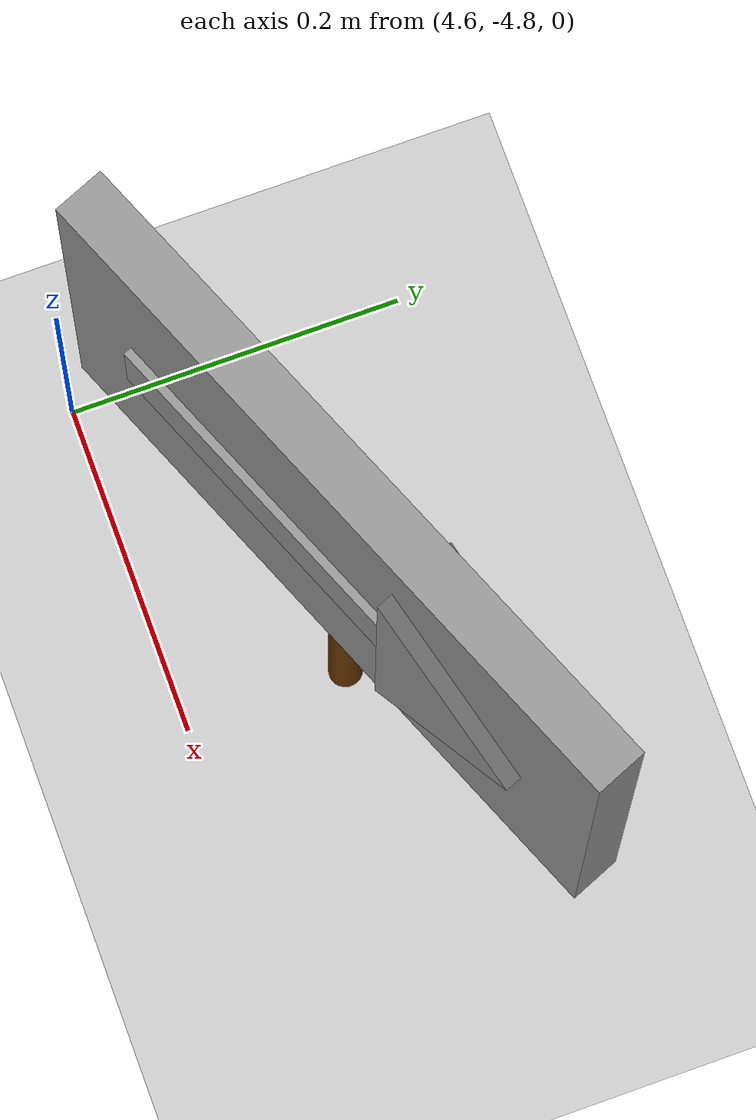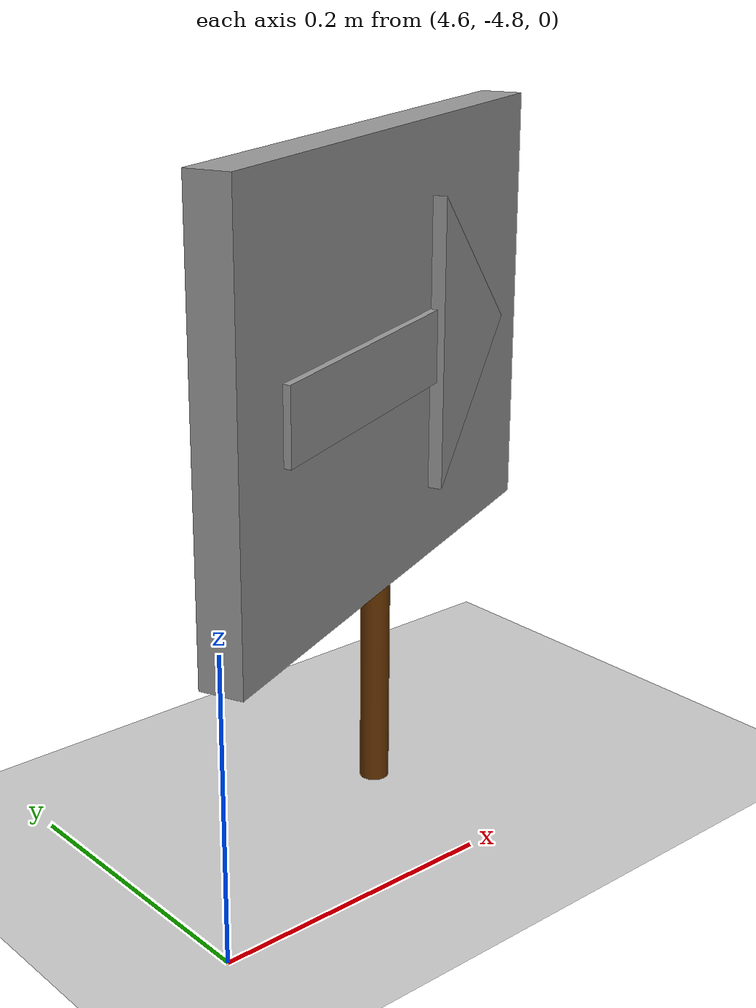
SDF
<sdf version="1.7">
 <world name="default">
  <model name="ground_plane">
   <static>1</static>
   <link name="link">
    <collision name="collision">
     <geometry><plane><normal>0 0 1</normal><size>100 100</size></plane></geometry>
     <surface>
      <contact><collide_bitmask>65535</collide_bitmask></contact>
      <friction><ode><mu>100</mu><mu2>50</mu2></ode></friction>
     </surface>
    </collision>
    <visual name="visual">
     <cast_shadows>0</cast_shadows>
     <geometry><plane><normal>0 0 1</normal><size>100 100</size></plane></geometry>
     <material>
      <script><uri>file://media/materials/scripts/gazebo.material</uri><name>Gazebo/Grey</name></script>
     </material>
    </visual>
   </link>
  </model>
  <model name="arrow_board_0">
   <link name="link_0">
    <inertial>
     <mass>1</mass>
     <inertia><ixx>0.145833</ixx><ixy>0</ixy><ixz>0</ixz><iyy>0.145833</iyy><iyz>0</iyz><izz>0.125</izz></inertia>
    </inertial>
    <pose>-0.01675 0.00625 0.1625 0 -0 0</pose>
    <gravity>0</gravity>
    <visual name="visual">
     <geometry><cylinder><radius>0.01</radius><length>0.3</length></cylinder></geometry>
     <material>
      <lighting>1</lighting>
      <script><uri>file://media/materials/scripts/gazebo.material</uri><name>Gazebo/Grey</name></script>
      <shader type="pixel"><normal_map>__default__</normal_map></shader>
      <ambient>0.4 0.2 0 1</ambient>
      <diffuse>0.4 0.2 0 1</diffuse>
      <specular>0 0 0 1</specular>
      <emissive>0 0 0 1</emissive>
     </material>
    </visual>
    <collision name="collision">
     <geometry><cylinder><radius>0.01</radius><length>0.3</length></cylinder></geometry>
     <surface>
      <friction>
       <ode><mu>1</mu><mu2>1</mu2><fdir1>0 0 0</fdir1><slip1>0</slip1><slip2>0</slip2></ode>
       <torsional>
        <coefficient>1</coefficient>
        <patch_radius>0</patch_radius>
        <surface_radius>0</surface_radius>
        <use_patch_radius>1</use_patch_radius>
        <ode><slip>0</slip></ode>
       </torsional>
      </friction>
      <bounce><restitution_coefficient>0</restitution_coefficient><threshold>1e+06</threshold></bounce>
      <contact>
       <collide_without_contact>0</collide_without_contact>
       <collide_without_contact_bitmask>1</collide_without_contact_bitmask>
       <collide_bitmask>1</collide_bitmask>
       <ode>
        <soft_cfm>0</soft_cfm>
        <soft_erp>0.2</soft_erp>
        <kp>1e+13</kp>
        <kd>1</kd>
        <max_vel>0.01</max_vel>
        <min_depth>0</min_depth>
       </ode>
       <bullet>
        <split_impulse>1</split_impulse>
        <split_impulse_penetration_threshold>-0.01</split_impulse_penetration_threshold>
        <soft_cfm>0</soft_cfm>
        <soft_erp>0.2</soft_erp>
        <kp>1e+13</kp>
        <kd>1</kd>
       </bullet>
      </contact>
     </surface>
    </collision>
   </link>
   <link name="link_1">
    <inertial>
     <mass>1</mass>
     <inertia>
      <ixx>0.166667</ixx>
      <ixy>0</ixy>
      <ixz>0</ixz>
      <iyy>0.166667</iyy>
      <iyz>0</iyz>
      <izz>0.166667</izz>
     </inertia>
    </inertial>
    <pose>-0.01675 0.00625 0.3125 0 -0 0</pose>
    <gravity>0</gravity>
    <visual name="visual">
     <geometry><box><size>0.4 0.03 0.3</size></box></geometry>
     <material>
      <lighting>1</lighting>
      <script><uri>file://media/materials/scripts/gazebo.material</uri><name>Gazebo/Grey</name></script>
      <shader type="pixel"><normal_map>__default__</normal_map></shader>
      <ambient>1 1 1 1</ambient>
      <diffuse>1 1 1 1</diffuse>
      <specular>1 1 1 1</specular>
      <emissive>0 0 0 1</emissive>
     </material>
    </visual>
    <collision name="collision">
     <geometry><box><size>0.4 0.03 0.3</size></box></geometry>
     <surface>
      <friction>
       <ode><mu>1</mu><mu2>1</mu2><fdir1>0 0 0</fdir1><slip1>0</slip1><slip2>0</slip2></ode>
       <torsional>
        <coefficient>1</coefficient>
        <patch_radius>0</patch_radius>
        <surface_radius>0</surface_radius>
        <use_patch_radius>1</use_patch_radius>
        <ode><slip>0</slip></ode>
       </torsional>
      </friction>
      <bounce><restitution_coefficient>0</restitution_coefficient><threshold>1e+06</threshold></bounce>
      <contact>
       <collide_without_contact>0</collide_without_contact>
       <collide_without_contact_bitmask>1</collide_without_contact_bitmask>
       <collide_bitmask>1</collide_bitmask>
       <ode>
        <soft_cfm>0</soft_cfm>
        <soft_erp>0.2</soft_erp>
        <kp>1e+13</kp>
        <kd>1</kd>
        <max_vel>0.01</max_vel>
        <min_depth>0</min_depth>
       </ode>
       <bullet>
        <split_impulse>1</split_impulse>
        <split_impulse_penetration_threshold>-0.01</split_impulse_penetration_threshold>
        <soft_cfm>0</soft_cfm>
        <soft_erp>0.2</soft_erp>
        <kp>1e+13</kp>
        <kd>1</kd>
       </bullet>
      </contact>
     </surface>
    </collision>
   </link>
   <link name="link_2">
    <inertial>
     <mass>1</mass>
     <inertia>
      <ixx>0.166667</ixx>
      <ixy>0</ixy>
      <ixz>0</ixz>
      <iyy>0.166667</iyy>
      <iyz>0</iyz>
      <izz>0.166667</izz>
     </inertia>
    </inertial>
    <pose>-0.06675 0.00625 0.3125 0 -0 0</pose>
    <gravity>0</gravity>
    <visual name="visual">
     <geometry><box><size>0.2 0.04 0.05</size></box></geometry>
     <material>
      <lighting>1</lighting>
      <script><uri>file://media/materials/scripts/gazebo.material</uri><name>Gazebo/Grey</name></script>
      <shader type="pixel"><normal_map>__default__</normal_map></shader>
      <ambient>0 0 0 1</ambient>
      <diffuse>0 0 0 1</diffuse>
      <specular>0 0 0 1</specular>
      <emissive>0 0 0 1</emissive>
     </material>
    </visual>
    <collision name="collision">
     <geometry><box><size>0.2 0.04 0.05</size></box></geometry>
     <surface>
      <friction>
       <ode><mu>1</mu><mu2>1</mu2><fdir1>0 0 0</fdir1><slip1>0</slip1><slip2>0</slip2></ode>
       <torsional>
        <coefficient>1</coefficient>
        <patch_radius>0</patch_radius>
        <surface_radius>0</surface_radius>
        <use_patch_radius>1</use_patch_radius>
        <ode><slip>0</slip></ode>
       </torsional>
      </friction>
      <bounce><restitution_coefficient>0</restitution_coefficient><threshold>1e+06</threshold></bounce>
      <contact>
       <collide_without_contact>0</collide_without_contact>
       <collide_without_contact_bitmask>1</collide_without_contact_bitmask>
       <collide_bitmask>1</collide_bitmask>
       <ode>
        <soft_cfm>0</soft_cfm>
        <soft_erp>0.2</soft_erp>
        <kp>1e+13</kp>
        <kd>1</kd>
        <max_vel>0.01</max_vel>
        <min_depth>0</min_depth>
       </ode>
       <bullet>
        <split_impulse>1</split_impulse>
        <split_impulse_penetration_threshold>-0.01</split_impulse_penetration_threshold>
        <soft_cfm>0</soft_cfm>
        <soft_erp>0.2</soft_erp>
        <kp>1e+13</kp>
        <kd>1</kd>
       </bullet>
      </contact>
     </surface>
    </collision>
   </link>
   <link name="link_4">
    <inertial>
     <mass>1</mass>
     <inertia>
      <ixx>0.166667</ixx>
      <ixy>0</ixy>
      <ixz>0</ixz>
      <iyy>0.166667</iyy>
      <iyz>0</iyz>
      <izz>0.166667</izz>
     </inertia>
    </inertial>
    <pose>0.033583 -0.01875 0.2125 0 -0 0</pose>
    <gravity>0</gravity>
    <visual name="visual">
     <geometry>
      <mesh>
       <uri>/home/ritesh/mobrob_ws/src/mobrob/meshes/arrow_head.stl</uri>
       <scale>0.001 0.001 0.001</scale>
      </mesh>
     </geometry>
     <material>
      <lighting>1</lighting>
      <script><uri>file://media/materials/scripts/gazebo.material</uri><name>Gazebo/Grey</name></script>
      <shader type="pixel"><normal_map>__default__</normal_map></shader>
      <ambient>0 0 0 1</ambient>
      <diffuse>0 0 0 1</diffuse>
      <specular>0 0 0 1</specular>
      <emissive>0 0 0 1</emissive>
     </material>
    </visual>
    <collision name="collision">
     <geometry>
      <mesh>
       <uri>/home/ritesh/mobrob_ws/src/mobrob/meshes/arrow_head.stl</uri>
       <scale>0.001 0.001 0.001</scale>
      </mesh>
     </geometry>
     <surface>
      <friction>
       <ode><mu>1</mu><mu2>1</mu2><fdir1>0 0 0</fdir1><slip1>0</slip1><slip2>0</slip2></ode>
       <torsional>
        <coefficient>1</coefficient>
        <patch_radius>0</patch_radius>
        <surface_radius>0</surface_radius>
        <use_patch_radius>1</use_patch_radius>
        <ode><slip>0</slip></ode>
       </torsional>
      </friction>
      <bounce><restitution_coefficient>0</restitution_coefficient><threshold>1e+06</threshold></bounce>
      <contact>
       <collide_without_contact>0</collide_without_contact>
       <collide_without_contact_bitmask>1</collide_without_contact_bitmask>
       <collide_bitmask>1</collide_bitmask>
       <ode>
        <soft_cfm>0</soft_cfm>
        <soft_erp>0.2</soft_erp>
        <kp>1e+13</kp>
        <kd>1</kd>
        <max_vel>0.01</max_vel>
        <min_depth>0</min_depth>
       </ode>
       <bullet>
        <split_impulse>1</split_impulse>
        <split_impulse_penetration_threshold>-0.01</split_impulse_penetration_threshold>
        <soft_cfm>0</soft_cfm>
        <soft_erp>0.2</soft_erp>
        <kp>1e+13</kp>
        <kd>1</kd>
       </bullet>
      </contact>
     </surface>
    </collision>
   </link>
   <static>0</static>
   <pose>4.81723 -4.70326 -0 0 -0 0.390976</pose>
  </model>
 </world>
</sdf>
